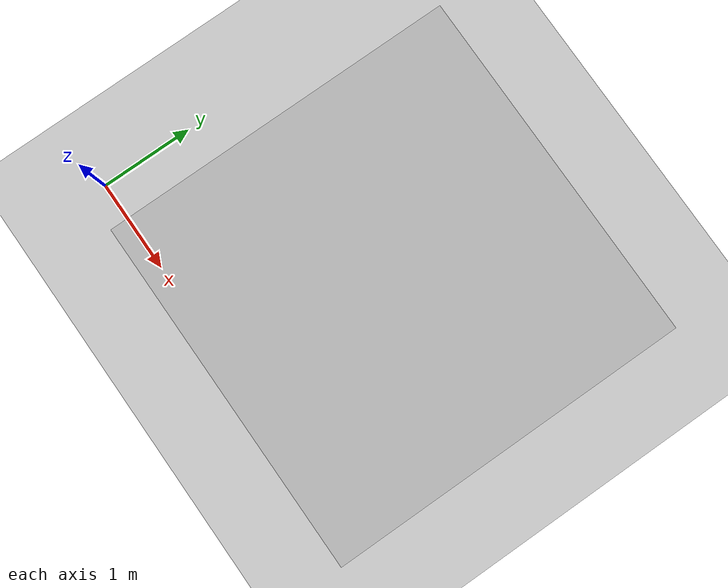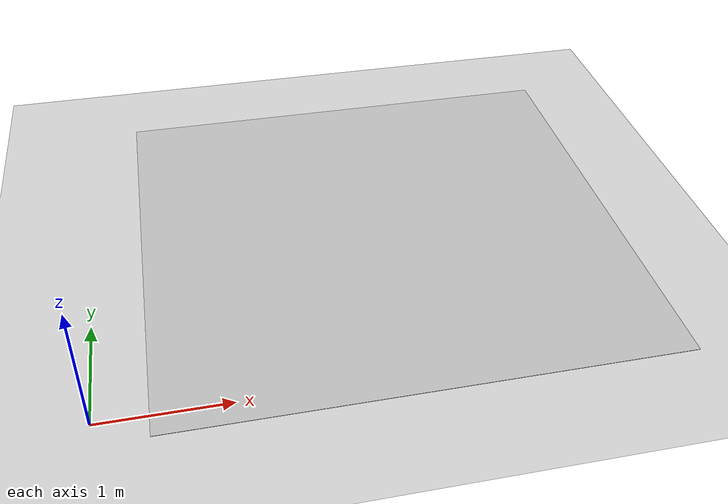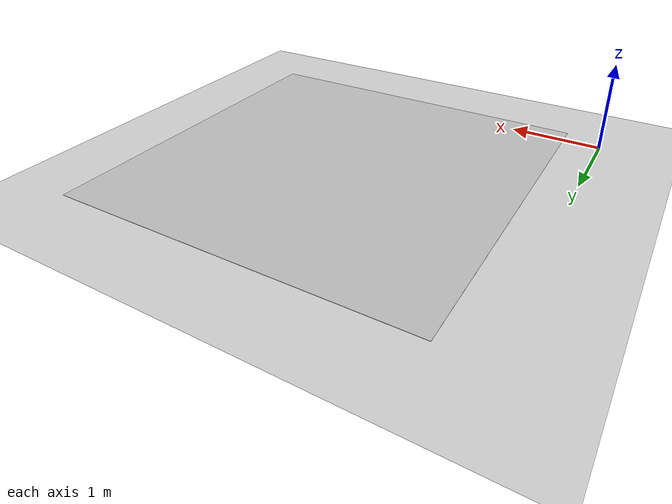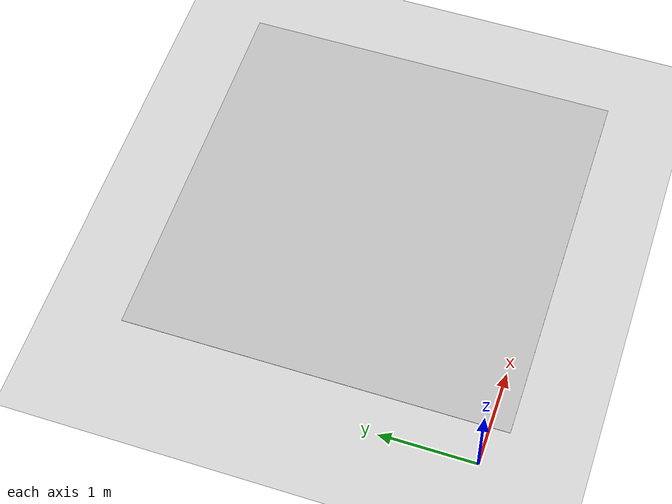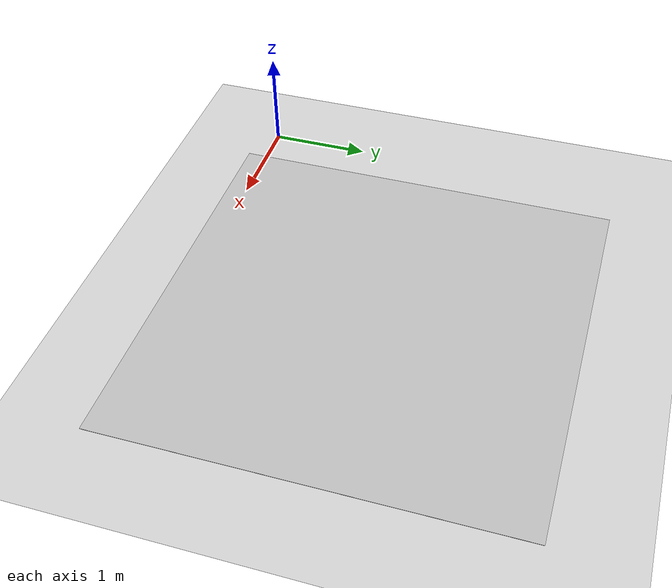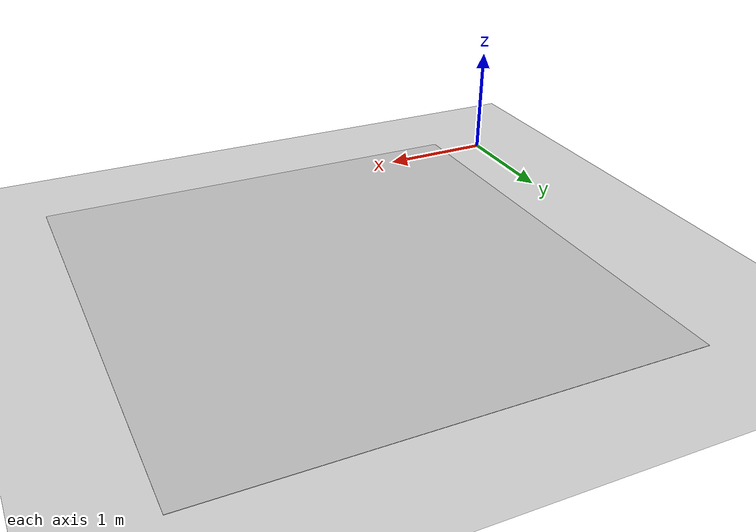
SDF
<sdf version="1.4">
  <world name="default">

    <scene>
      <ambient>0.4 0.4 0.4 1</ambient>
      <background>0.7 0.7 0.7 1</background>
      <shadows>true</shadows>
    </scene>

    <!-- A global light source -->
    <include>
      <uri>model://sun</uri>
    </include>

    <!-- A ground plane -->
    <include>
      <uri>model://ground_plane</uri>
    </include>

    <!-- Maze map -->
    <include>
      <uri>model://courseabc</uri>
      <pose> 2.4 1.8 0.01 0 0 0</pose>
    </include>

    <physics type="ode">
      <real_time_update_rate>1000.0</real_time_update_rate>
      <max_step_size>0.001</max_step_size>
      <real_time_factor>1</real_time_factor>
      <ode>
        <solver>
          <type>quick</type>
          <iters>150</iters>
          <precon_iters>0</precon_iters>
          <sor>1.400000</sor>
          <use_dynamic_moi_rescaling>1</use_dynamic_moi_rescaling>
        </solver>
        <constraints>
          <cfm>0.00001</cfm>
          <erp>0.2</erp>
          <contact_max_correcting_vel>2000.000000</contact_max_correcting_vel>
          <contact_surface_layer>0.01000</contact_surface_layer>
        </constraints>
      </ode>
    </physics>
  </world>

</sdf>

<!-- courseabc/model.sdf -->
<sdf version="1.6">
  <model name="courseabc">
    <static>true</static>
    <link name="course_link">
      <collision name="course_collision">
        <geometry>
          <plane>
            <normal>0 0 1</normal>
            <size>4 4</size>
          </plane>
        </geometry>
        <surface>
          <friction>
            <ode>
              <mu>100</mu>
              <mu2>50</mu2>
            </ode>
          </friction>
        </surface>
      </collision>
      <visual name="course_visual">
        <cast_shadows>false</cast_shadows>
        <geometry>
	        <plane>
            <normal>0 0 1</normal>
            <size>4 4</size>
          </plane>
        </geometry>
	      <material>
          <script>
            <uri>model://courseabc/materials/scripts</uri>
            <uri>model://courseabc/materials/textures</uri>
            <name>courseabc</name>
          </script>
        </material>
      </visual>
    </link>
  </model>
</sdf>
